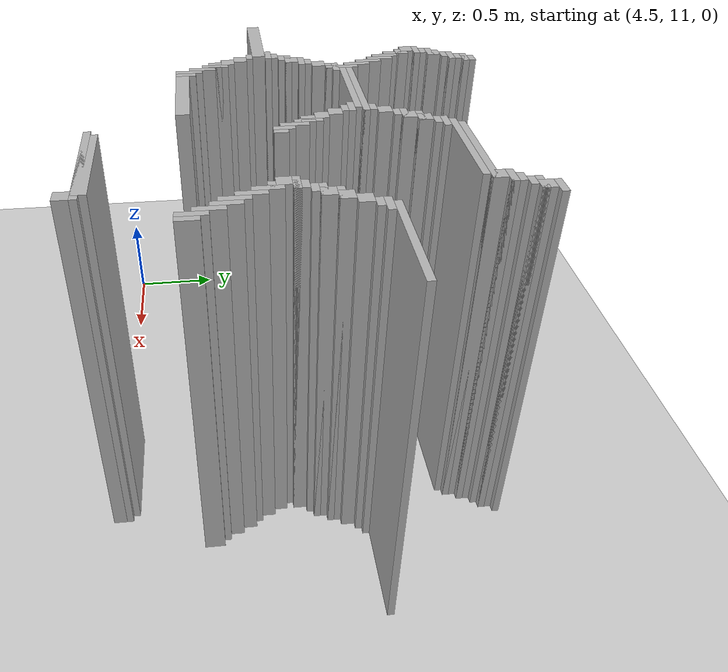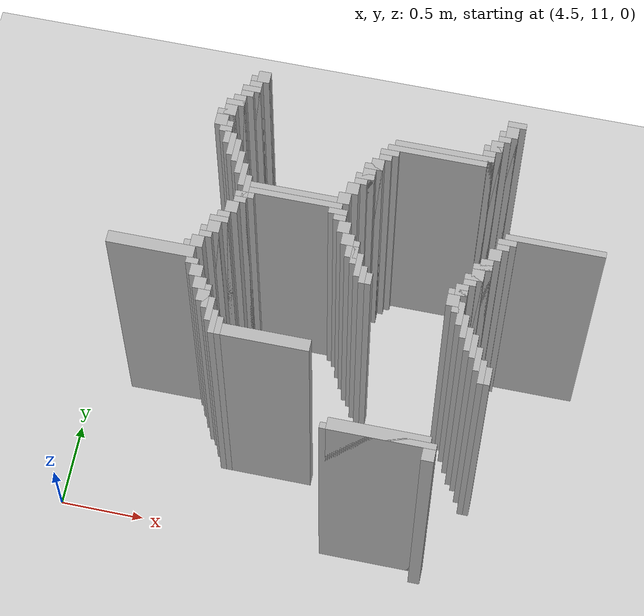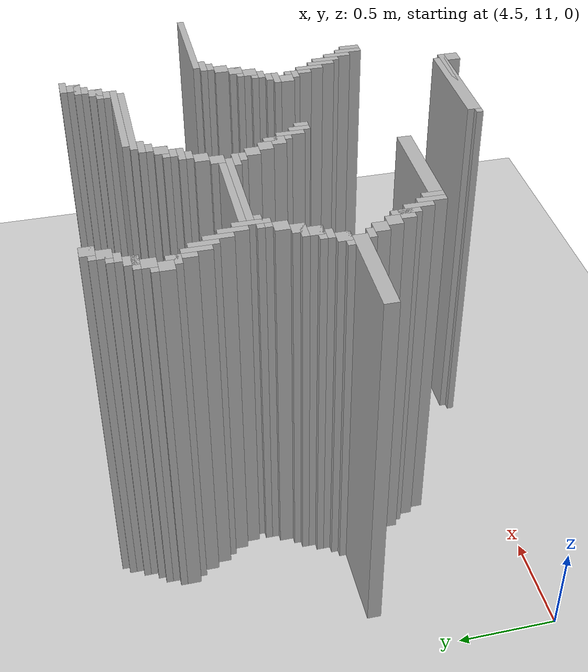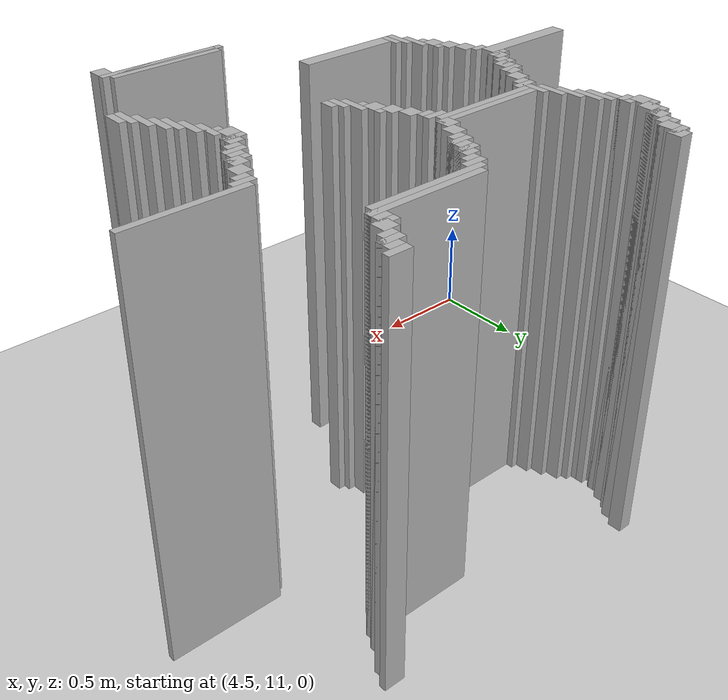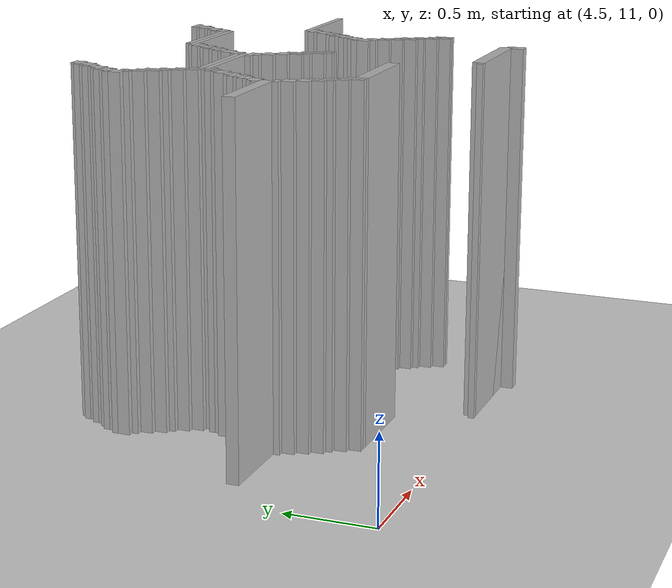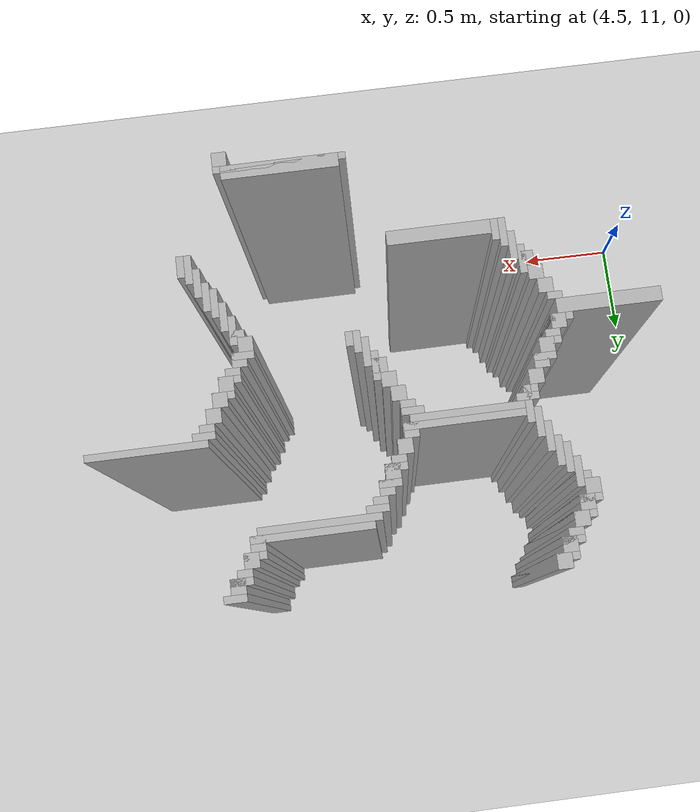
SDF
<sdf version="1.6">
 <world name="slam_world">
  <model name="ground_plane">
   <static>true</static>
   <link name="link">
    <collision name="collision">
     <geometry><plane><normal>0 0 1</normal><size>100 100</size></plane></geometry>
    </collision>
    <visual name="visual">
     <geometry><plane><normal>0 0 1</normal><size>100 100</size></plane></geometry>
     <material>
      <ambient>0.8 0.8 0.8 1</ambient>
      <diffuse>0.8 0.8 0.8 1</diffuse>
      <specular>0.8 0.8 0.8 1</specular>
     </material>
    </visual>
   </link>
  </model>
  <model name="wall_1466">
   <static>true</static>
   <pose>5.359628770301624 13.016241299303944 1.0 0 0 0</pose>
   <link name="link">
    <collision name="collision">
     <geometry><box><size>0.06960556844547564 0.06960556844547564 2.0</size></box></geometry>
    </collision>
    <visual name="visual">
     <geometry><box><size>0.06960556844547564 0.06960556844547564 2.0</size></box></geometry>
     <material><ambient>0.5 0.5 0.5 1</ambient><diffuse>0.7 0.7 0.7 1</diffuse></material>
    </visual>
   </link>
  </model>
  <model name="wall_1478">
   <static>true</static>
   <pose>5.342227378190255 12.998839907192576 1.0 0 0 0</pose>
   <link name="link">
    <collision name="collision">
     <geometry><box><size>0.10440835266821345 0.03480278422273782 2.0</size></box></geometry>
    </collision>
    <visual name="visual">
     <geometry><box><size>0.10440835266821345 0.03480278422273782 2.0</size></box></geometry>
     <material><ambient>0.5 0.5 0.5 1</ambient><diffuse>0.7 0.7 0.7 1</diffuse></material>
    </visual>
   </link>
  </model>
  <model name="wall_1479">
   <static>true</static>
   <pose>6.803944315545244 12.998839907192576 1.0 0 0 0</pose>
   <link name="link">
    <collision name="collision">
     <geometry><box><size>0.10440835266821345 0.03480278422273782 2.0</size></box></geometry>
    </collision>
    <visual name="visual">
     <geometry><box><size>0.10440835266821345 0.03480278422273782 2.0</size></box></geometry>
     <material><ambient>0.5 0.5 0.5 1</ambient><diffuse>0.7 0.7 0.7 1</diffuse></material>
    </visual>
   </link>
  </model>
  <model name="wall_1490">
   <static>true</static>
   <pose>5.324825986078886 12.946635730858468 1.0 0 0 0</pose>
   <link name="link">
    <collision name="collision">
     <geometry><box><size>0.06960556844547564 0.06960556844547564 2.0</size></box></geometry>
    </collision>
    <visual name="visual">
     <geometry><box><size>0.06960556844547564 0.06960556844547564 2.0</size></box></geometry>
     <material><ambient>0.5 0.5 0.5 1</ambient><diffuse>0.7 0.7 0.7 1</diffuse></material>
    </visual>
   </link>
  </model>
  <model name="wall_1491">
   <static>true</static>
   <pose>6.786542923433874 12.946635730858468 1.0 0 0 0</pose>
   <link name="link">
    <collision name="collision">
     <geometry><box><size>0.06960556844547564 0.06960556844547564 2.0</size></box></geometry>
    </collision>
    <visual name="visual">
     <geometry><box><size>0.06960556844547564 0.06960556844547564 2.0</size></box></geometry>
     <material><ambient>0.5 0.5 0.5 1</ambient><diffuse>0.7 0.7 0.7 1</diffuse></material>
    </visual>
   </link>
  </model>
  <model name="wall_1502">
   <static>true</static>
   <pose>5.307424593967517 12.929234338747099 1.0 0 0 0</pose>
   <link name="link">
    <collision name="collision">
     <geometry><box><size>0.10440835266821345 0.03480278422273782 2.0</size></box></geometry>
    </collision>
    <visual name="visual">
     <geometry><box><size>0.10440835266821345 0.03480278422273782 2.0</size></box></geometry>
     <material><ambient>0.5 0.5 0.5 1</ambient><diffuse>0.7 0.7 0.7 1</diffuse></material>
    </visual>
   </link>
  </model>
  <model name="wall_1503">
   <static>true</static>
   <pose>6.769141531322505 12.929234338747099 1.0 0 0 0</pose>
   <link name="link">
    <collision name="collision">
     <geometry><box><size>0.10440835266821345 0.03480278422273782 2.0</size></box></geometry>
    </collision>
    <visual name="visual">
     <geometry><box><size>0.10440835266821345 0.03480278422273782 2.0</size></box></geometry>
     <material><ambient>0.5 0.5 0.5 1</ambient><diffuse>0.7 0.7 0.7 1</diffuse></material>
    </visual>
   </link>
  </model>
  <model name="wall_1511">
   <static>true</static>
   <pose>5.290023201856148 12.894431554524362 1.0 0 0 0</pose>
   <link name="link">
    <collision name="collision">
     <geometry><box><size>0.06960556844547564 0.03480278422273782 2.0</size></box></geometry>
    </collision>
    <visual name="visual">
     <geometry><box><size>0.06960556844547564 0.03480278422273782 2.0</size></box></geometry>
     <material><ambient>0.5 0.5 0.5 1</ambient><diffuse>0.7 0.7 0.7 1</diffuse></material>
    </visual>
   </link>
  </model>
  <model name="wall_1512">
   <static>true</static>
   <pose>6.751740139211137 12.894431554524362 1.0 0 0 0</pose>
   <link name="link">
    <collision name="collision">
     <geometry><box><size>0.06960556844547564 0.03480278422273782 2.0</size></box></geometry>
    </collision>
    <visual name="visual">
     <geometry><box><size>0.06960556844547564 0.03480278422273782 2.0</size></box></geometry>
     <material><ambient>0.5 0.5 0.5 1</ambient><diffuse>0.7 0.7 0.7 1</diffuse></material>
    </visual>
   </link>
  </model>
  <model name="wall_1520">
   <static>true</static>
   <pose>5.25522041763341 12.842227378190255 1.0 0 0 0</pose>
   <link name="link">
    <collision name="collision">
     <geometry><box><size>0.06960556844547564 0.06960556844547564 2.0</size></box></geometry>
    </collision>
    <visual name="visual">
     <geometry><box><size>0.06960556844547564 0.06960556844547564 2.0</size></box></geometry>
     <material><ambient>0.5 0.5 0.5 1</ambient><diffuse>0.7 0.7 0.7 1</diffuse></material>
    </visual>
   </link>
  </model>
  <model name="wall_1521">
   <static>true</static>
   <pose>6.716937354988398 12.842227378190255 1.0 0 0 0</pose>
   <link name="link">
    <collision name="collision">
     <geometry><box><size>0.06960556844547564 0.06960556844547564 2.0</size></box></geometry>
    </collision>
    <visual name="visual">
     <geometry><box><size>0.06960556844547564 0.06960556844547564 2.0</size></box></geometry>
     <material><ambient>0.5 0.5 0.5 1</ambient><diffuse>0.7 0.7 0.7 1</diffuse></material>
    </visual>
   </link>
  </model>
  <model name="wall_1532">
   <static>true</static>
   <pose>5.237819025522041 12.824825986078885 1.0 0 0 0</pose>
   <link name="link">
    <collision name="collision">
     <geometry><box><size>0.10440835266821345 0.03480278422273782 2.0</size></box></geometry>
    </collision>
    <visual name="visual">
     <geometry><box><size>0.10440835266821345 0.03480278422273782 2.0</size></box></geometry>
     <material><ambient>0.5 0.5 0.5 1</ambient><diffuse>0.7 0.7 0.7 1</diffuse></material>
    </visual>
   </link>
  </model>
  <model name="wall_1533">
   <static>true</static>
   <pose>6.69953596287703 12.824825986078885 1.0 0 0 0</pose>
   <link name="link">
    <collision name="collision">
     <geometry><box><size>0.10440835266821345 0.03480278422273782 2.0</size></box></geometry>
    </collision>
    <visual name="visual">
     <geometry><box><size>0.10440835266821345 0.03480278422273782 2.0</size></box></geometry>
     <material><ambient>0.5 0.5 0.5 1</ambient><diffuse>0.7 0.7 0.7 1</diffuse></material>
    </visual>
   </link>
  </model>
  <model name="wall_1541">
   <static>true</static>
   <pose>5.220417633410673 12.772621809744779 1.0 0 0 0</pose>
   <link name="link">
    <collision name="collision">
     <geometry><box><size>0.06960556844547564 0.06960556844547564 2.0</size></box></geometry>
    </collision>
    <visual name="visual">
     <geometry><box><size>0.06960556844547564 0.06960556844547564 2.0</size></box></geometry>
     <material><ambient>0.5 0.5 0.5 1</ambient><diffuse>0.7 0.7 0.7 1</diffuse></material>
    </visual>
   </link>
  </model>
  <model name="wall_1542">
   <static>true</static>
   <pose>6.682134570765661 12.772621809744779 1.0 0 0 0</pose>
   <link name="link">
    <collision name="collision">
     <geometry><box><size>0.06960556844547564 0.06960556844547564 2.0</size></box></geometry>
    </collision>
    <visual name="visual">
     <geometry><box><size>0.06960556844547564 0.06960556844547564 2.0</size></box></geometry>
     <material><ambient>0.5 0.5 0.5 1</ambient><diffuse>0.7 0.7 0.7 1</diffuse></material>
    </visual>
   </link>
  </model>
  <model name="wall_1550">
   <static>true</static>
   <pose>5.203016241299304 12.75522041763341 1.0 0 0 0</pose>
   <link name="link">
    <collision name="collision">
     <geometry><box><size>0.10440835266821345 0.03480278422273782 2.0</size></box></geometry>
    </collision>
    <visual name="visual">
     <geometry><box><size>0.10440835266821345 0.03480278422273782 2.0</size></box></geometry>
     <material><ambient>0.5 0.5 0.5 1</ambient><diffuse>0.7 0.7 0.7 1</diffuse></material>
    </visual>
   </link>
  </model>
  <model name="wall_1551">
   <static>true</static>
   <pose>6.438515081206496 12.75522041763341 1.0 0 0 0</pose>
   <link name="link">
    <collision name="collision">
     <geometry><box><size>0.5568445475638051 0.03480278422273782 2.0</size></box></geometry>
    </collision>
    <visual name="visual">
     <geometry><box><size>0.5568445475638051 0.03480278422273782 2.0</size></box></geometry>
     <material><ambient>0.5 0.5 0.5 1</ambient><diffuse>0.7 0.7 0.7 1</diffuse></material>
    </visual>
   </link>
  </model>
  <model name="wall_1562">
   <static>true</static>
   <pose>5.185614849187935 12.703016241299304 1.0 0 0 0</pose>
   <link name="link">
    <collision name="collision">
     <geometry><box><size>0.06960556844547564 0.06960556844547564 2.0</size></box></geometry>
    </collision>
    <visual name="visual">
     <geometry><box><size>0.06960556844547564 0.06960556844547564 2.0</size></box></geometry>
     <material><ambient>0.5 0.5 0.5 1</ambient><diffuse>0.7 0.7 0.7 1</diffuse></material>
    </visual>
   </link>
  </model>
  <model name="wall_1563">
   <static>true</static>
   <pose>6.403712296983758 12.720417633410673 1.0 0 0 0</pose>
   <link name="link">
    <collision name="collision">
     <geometry><box><size>0.5568445475638051 0.03480278422273782 2.0</size></box></geometry>
    </collision>
    <visual name="visual">
     <geometry><box><size>0.5568445475638051 0.03480278422273782 2.0</size></box></geometry>
     <material><ambient>0.5 0.5 0.5 1</ambient><diffuse>0.7 0.7 0.7 1</diffuse></material>
    </visual>
   </link>
  </model>
  <model name="wall_1575">
   <static>true</static>
   <pose>5.237819025522041 12.633410672853827 1.0 0 0 0</pose>
   <link name="link">
    <collision name="collision">
     <geometry><box><size>0.03480278422273782 0.13921113689095127 2.0</size></box></geometry>
    </collision>
    <visual name="visual">
     <geometry><box><size>0.03480278422273782 0.13921113689095127 2.0</size></box></geometry>
     <material><ambient>0.5 0.5 0.5 1</ambient><diffuse>0.7 0.7 0.7 1</diffuse></material>
    </visual>
   </link>
  </model>
  <model name="wall_1576">
   <static>true</static>
   <pose>6.142691415313225 12.685614849187935 1.0 0 0 0</pose>
   <link name="link">
    <collision name="collision">
     <geometry><box><size>0.10440835266821345 0.03480278422273782 2.0</size></box></geometry>
    </collision>
    <visual name="visual">
     <geometry><box><size>0.10440835266821345 0.03480278422273782 2.0</size></box></geometry>
     <material><ambient>0.5 0.5 0.5 1</ambient><diffuse>0.7 0.7 0.7 1</diffuse></material>
    </visual>
   </link>
  </model>
  <model name="wall_1590">
   <static>true</static>
   <pose>5.220417633410673 12.650812064965196 1.0 0 0 0</pose>
   <link name="link">
    <collision name="collision">
     <geometry><box><size>0.06960556844547564 0.03480278422273782 2.0</size></box></geometry>
    </collision>
    <visual name="visual">
     <geometry><box><size>0.06960556844547564 0.03480278422273782 2.0</size></box></geometry>
     <material><ambient>0.5 0.5 0.5 1</ambient><diffuse>0.7 0.7 0.7 1</diffuse></material>
    </visual>
   </link>
  </model>
  <model name="wall_1591">
   <static>true</static>
   <pose>6.125290023201856 12.650812064965196 1.0 0 0 0</pose>
   <link name="link">
    <collision name="collision">
     <geometry><box><size>0.06960556844547564 0.03480278422273782 2.0</size></box></geometry>
    </collision>
    <visual name="visual">
     <geometry><box><size>0.06960556844547564 0.03480278422273782 2.0</size></box></geometry>
     <material><ambient>0.5 0.5 0.5 1</ambient><diffuse>0.7 0.7 0.7 1</diffuse></material>
    </visual>
   </link>
  </model>
  <model name="wall_1605">
   <static>true</static>
   <pose>5.27262180974478 12.563805104408353 1.0 0 0 0</pose>
   <link name="link">
    <collision name="collision">
     <geometry><box><size>0.03480278422273782 0.13921113689095127 2.0</size></box></geometry>
    </collision>
    <visual name="visual">
     <geometry><box><size>0.03480278422273782 0.13921113689095127 2.0</size></box></geometry>
     <material><ambient>0.5 0.5 0.5 1</ambient><diffuse>0.7 0.7 0.7 1</diffuse></material>
    </visual>
   </link>
  </model>
  <model name="wall_1606">
   <static>true</static>
   <pose>6.090487238979118 12.59860788863109 1.0 0 0 0</pose>
   <link name="link">
    <collision name="collision">
     <geometry><box><size>0.06960556844547564 0.06960556844547564 2.0</size></box></geometry>
    </collision>
    <visual name="visual">
     <geometry><box><size>0.06960556844547564 0.06960556844547564 2.0</size></box></geometry>
     <material><ambient>0.5 0.5 0.5 1</ambient><diffuse>0.7 0.7 0.7 1</diffuse></material>
    </visual>
   </link>
  </model>
  <model name="wall_1622">
   <static>true</static>
   <pose>5.307424593967517 12.529002320185615 1.0 0 0 0</pose>
   <link name="link">
    <collision name="collision">
     <geometry><box><size>0.03480278422273782 0.13921113689095127 2.0</size></box></geometry>
    </collision>
    <visual name="visual">
     <geometry><box><size>0.03480278422273782 0.13921113689095127 2.0</size></box></geometry>
     <material><ambient>0.5 0.5 0.5 1</ambient><diffuse>0.7 0.7 0.7 1</diffuse></material>
    </visual>
   </link>
  </model>
  <model name="wall_1623">
   <static>true</static>
   <pose>6.073085846867749 12.581206496519721 1.0 0 0 0</pose>
   <link name="link">
    <collision name="collision">
     <geometry><box><size>0.10440835266821345 0.03480278422273782 2.0</size></box></geometry>
    </collision>
    <visual name="visual">
     <geometry><box><size>0.10440835266821345 0.03480278422273782 2.0</size></box></geometry>
     <material><ambient>0.5 0.5 0.5 1</ambient><diffuse>0.7 0.7 0.7 1</diffuse></material>
    </visual>
   </link>
  </model>
  <model name="wall_1636">
   <static>true</static>
   <pose>6.05568445475638 12.529002320185615 1.0 0 0 0</pose>
   <link name="link">
    <collision name="collision">
     <geometry><box><size>0.06960556844547564 0.06960556844547564 2.0</size></box></geometry>
    </collision>
    <visual name="visual">
     <geometry><box><size>0.06960556844547564 0.06960556844547564 2.0</size></box></geometry>
     <material><ambient>0.5 0.5 0.5 1</ambient><diffuse>0.7 0.7 0.7 1</diffuse></material>
    </visual>
   </link>
  </model>
  <model name="wall_1650">
   <static>true</static>
   <pose>5.342227378190255 12.459396751740138 1.0 0 0 0</pose>
   <link name="link">
    <collision name="collision">
     <geometry><box><size>0.03480278422273782 0.13921113689095127 2.0</size></box></geometry>
    </collision>
    <visual name="visual">
     <geometry><box><size>0.03480278422273782 0.13921113689095127 2.0</size></box></geometry>
     <material><ambient>0.5 0.5 0.5 1</ambient><diffuse>0.7 0.7 0.7 1</diffuse></material>
    </visual>
   </link>
  </model>
  <model name="wall_1651">
   <static>true</static>
   <pose>6.038283062645012 12.511600928074245 1.0 0 0 0</pose>
   <link name="link">
    <collision name="collision">
     <geometry><box><size>0.10440835266821345 0.03480278422273782 2.0</size></box></geometry>
    </collision>
    <visual name="visual">
     <geometry><box><size>0.10440835266821345 0.03480278422273782 2.0</size></box></geometry>
     <material><ambient>0.5 0.5 0.5 1</ambient><diffuse>0.7 0.7 0.7 1</diffuse></material>
    </visual>
   </link>
  </model>
  <model name="wall_1664">
   <static>true</static>
   <pose>6.020881670533642 12.476798143851507 1.0 0 0 0</pose>
   <link name="link">
    <collision name="collision">
     <geometry><box><size>0.06960556844547564 0.03480278422273782 2.0</size></box></geometry>
    </collision>
    <visual name="visual">
     <geometry><box><size>0.06960556844547564 0.03480278422273782 2.0</size></box></geometry>
     <material><ambient>0.5 0.5 0.5 1</ambient><diffuse>0.7 0.7 0.7 1</diffuse></material>
    </visual>
   </link>
  </model>
  <model name="wall_1676">
   <static>true</static>
   <pose>5.377030162412993 12.389791183294664 1.0 0 0 0</pose>
   <link name="link">
    <collision name="collision">
     <geometry><box><size>0.03480278422273782 0.13921113689095127 2.0</size></box></geometry>
    </collision>
    <visual name="visual">
     <geometry><box><size>0.03480278422273782 0.13921113689095127 2.0</size></box></geometry>
     <material><ambient>0.5 0.5 0.5 1</ambient><diffuse>0.7 0.7 0.7 1</diffuse></material>
    </visual>
   </link>
  </model>
  <model name="wall_1677">
   <static>true</static>
   <pose>5.986078886310905 12.424593967517401 1.0 0 0 0</pose>
   <link name="link">
    <collision name="collision">
     <geometry><box><size>0.06960556844547564 0.06960556844547564 2.0</size></box></geometry>
    </collision>
    <visual name="visual">
     <geometry><box><size>0.06960556844547564 0.06960556844547564 2.0</size></box></geometry>
     <material><ambient>0.5 0.5 0.5 1</ambient><diffuse>0.7 0.7 0.7 1</diffuse></material>
    </visual>
   </link>
  </model>
  <model name="wall_1693">
   <static>true</static>
   <pose>5.41183294663573 12.302784222737818 1.0 0 0 0</pose>
   <link name="link">
    <collision name="collision">
     <geometry><box><size>0.03480278422273782 0.17401392111368907 2.0</size></box></geometry>
    </collision>
    <visual name="visual">
     <geometry><box><size>0.03480278422273782 0.17401392111368907 2.0</size></box></geometry>
     <material><ambient>0.5 0.5 0.5 1</ambient><diffuse>0.7 0.7 0.7 1</diffuse></material>
    </visual>
   </link>
  </model>
  <model name="wall_1694">
   <static>true</static>
   <pose>5.951276102088166 12.354988399071924 1.0 0 0 0</pose>
   <link name="link">
    <collision name="collision">
     <geometry><box><size>0.06960556844547564 0.06960556844547564 2.0</size></box></geometry>
    </collision>
    <visual name="visual">
     <geometry><box><size>0.06960556844547564 0.06960556844547564 2.0</size></box></geometry>
     <material><ambient>0.5 0.5 0.5 1</ambient><diffuse>0.7 0.7 0.7 1</diffuse></material>
    </visual>
   </link>
  </model>
  <model name="wall_1710">
   <static>true</static>
   <pose>5.707656612529002 12.337587006960556 1.0 0 0 0</pose>
   <link name="link">
    <collision name="collision">
     <geometry><box><size>0.5568445475638051 0.03480278422273782 2.0</size></box></geometry>
    </collision>
    <visual name="visual">
     <geometry><box><size>0.5568445475638051 0.03480278422273782 2.0</size></box></geometry>
     <material><ambient>0.5 0.5 0.5 1</ambient><diffuse>0.7 0.7 0.7 1</diffuse></material>
    </visual>
   </link>
  </model>
  <model name="wall_1723">
   <static>true</static>
   <pose>5.690255220417633 12.302784222737818 1.0 0 0 0</pose>
   <link name="link">
    <collision name="collision">
     <geometry><box><size>0.5220417633410672 0.03480278422273782 2.0</size></box></geometry>
    </collision>
    <visual name="visual">
     <geometry><box><size>0.5220417633410672 0.03480278422273782 2.0</size></box></geometry>
     <material><ambient>0.5 0.5 0.5 1</ambient><diffuse>0.7 0.7 0.7 1</diffuse></material>
    </visual>
   </link>
  </model>
  <model name="wall_1724">
   <static>true</static>
   <pose>7.134570765661253 12.302784222737818 1.0 0 0 0</pose>
   <link name="link">
    <collision name="collision">
     <geometry><box><size>0.5568445475638051 0.03480278422273782 2.0</size></box></geometry>
    </collision>
    <visual name="visual">
     <geometry><box><size>0.5568445475638051 0.03480278422273782 2.0</size></box></geometry>
     <material><ambient>0.5 0.5 0.5 1</ambient><diffuse>0.7 0.7 0.7 1</diffuse></material>
    </visual>
   </link>
  </model>
  <model name="wall_1738">
   <static>true</static>
   <pose>5.41183294663573 12.267981438515081 1.0 0 0 0</pose>
   <link name="link">
    <collision name="collision">
     <geometry><box><size>0.10440835266821345 0.03480278422273782 2.0</size></box></geometry>
    </collision>
    <visual name="visual">
     <geometry><box><size>0.10440835266821345 0.03480278422273782 2.0</size></box></geometry>
     <material><ambient>0.5 0.5 0.5 1</ambient><diffuse>0.7 0.7 0.7 1</diffuse></material>
    </visual>
   </link>
  </model>
  <model name="wall_1739">
   <static>true</static>
   <pose>5.933874709976798 12.267981438515081 1.0 0 0 0</pose>
   <link name="link">
    <collision name="collision">
     <geometry><box><size>0.10440835266821345 0.03480278422273782 2.0</size></box></geometry>
    </collision>
    <visual name="visual">
     <geometry><box><size>0.10440835266821345 0.03480278422273782 2.0</size></box></geometry>
     <material><ambient>0.5 0.5 0.5 1</ambient><diffuse>0.7 0.7 0.7 1</diffuse></material>
    </visual>
   </link>
  </model>
  <model name="wall_1740">
   <static>true</static>
   <pose>6.8735498839907185 12.267981438515081 1.0 0 0 0</pose>
   <link name="link">
    <collision name="collision">
     <geometry><box><size>0.10440835266821345 0.03480278422273782 2.0</size></box></geometry>
    </collision>
    <visual name="visual">
     <geometry><box><size>0.10440835266821345 0.03480278422273782 2.0</size></box></geometry>
     <material><ambient>0.5 0.5 0.5 1</ambient><diffuse>0.7 0.7 0.7 1</diffuse></material>
    </visual>
   </link>
  </model>
  <model name="wall_1756">
   <static>true</static>
   <pose>5.3944315545243615 12.233178654292344 1.0 0 0 0</pose>
   <link name="link">
    <collision name="collision">
     <geometry><box><size>0.06960556844547564 0.03480278422273782 2.0</size></box></geometry>
    </collision>
    <visual name="visual">
     <geometry><box><size>0.06960556844547564 0.03480278422273782 2.0</size></box></geometry>
     <material><ambient>0.5 0.5 0.5 1</ambient><diffuse>0.7 0.7 0.7 1</diffuse></material>
    </visual>
   </link>
  </model>
  <model name="wall_1757">
   <static>true</static>
   <pose>5.951276102088166 12.233178654292344 1.0 0 0 0</pose>
   <link name="link">
    <collision name="collision">
     <geometry><box><size>0.06960556844547564 0.03480278422273782 2.0</size></box></geometry>
    </collision>
    <visual name="visual">
     <geometry><box><size>0.06960556844547564 0.03480278422273782 2.0</size></box></geometry>
     <material><ambient>0.5 0.5 0.5 1</ambient><diffuse>0.7 0.7 0.7 1</diffuse></material>
    </visual>
   </link>
  </model>
  <model name="wall_1758">
   <static>true</static>
   <pose>6.85614849187935 12.233178654292344 1.0 0 0 0</pose>
   <link name="link">
    <collision name="collision">
     <geometry><box><size>0.06960556844547564 0.03480278422273782 2.0</size></box></geometry>
    </collision>
    <visual name="visual">
     <geometry><box><size>0.06960556844547564 0.03480278422273782 2.0</size></box></geometry>
     <material><ambient>0.5 0.5 0.5 1</ambient><diffuse>0.7 0.7 0.7 1</diffuse></material>
    </visual>
   </link>
  </model>
  <model name="wall_1772">
   <static>true</static>
   <pose>5.359628770301624 12.180974477958236 1.0 0 0 0</pose>
   <link name="link">
    <collision name="collision">
     <geometry><box><size>0.06960556844547564 0.06960556844547564 2.0</size></box></geometry>
    </collision>
    <visual name="visual">
     <geometry><box><size>0.06960556844547564 0.06960556844547564 2.0</size></box></geometry>
     <material><ambient>0.5 0.5 0.5 1</ambient><diffuse>0.7 0.7 0.7 1</diffuse></material>
    </visual>
   </link>
  </model>
  <model name="wall_1773">
   <static>true</static>
   <pose>5.986078886310905 12.180974477958236 1.0 0 0 0</pose>
   <link name="link">
    <collision name="collision">
     <geometry><box><size>0.06960556844547564 0.06960556844547564 2.0</size></box></geometry>
    </collision>
    <visual name="visual">
     <geometry><box><size>0.06960556844547564 0.06960556844547564 2.0</size></box></geometry>
     <material><ambient>0.5 0.5 0.5 1</ambient><diffuse>0.7 0.7 0.7 1</diffuse></material>
    </visual>
   </link>
  </model>
  <model name="wall_1774">
   <static>true</static>
   <pose>6.821345707656612 12.180974477958236 1.0 0 0 0</pose>
   <link name="link">
    <collision name="collision">
     <geometry><box><size>0.06960556844547564 0.06960556844547564 2.0</size></box></geometry>
    </collision>
    <visual name="visual">
     <geometry><box><size>0.06960556844547564 0.06960556844547564 2.0</size></box></geometry>
     <material><ambient>0.5 0.5 0.5 1</ambient><diffuse>0.7 0.7 0.7 1</diffuse></material>
    </visual>
   </link>
  </model>
  <model name="wall_1788">
   <static>true</static>
   <pose>5.324825986078886 12.11136890951276 1.0 0 0 0</pose>
   <link name="link">
    <collision name="collision">
     <geometry><box><size>0.06960556844547564 0.06960556844547564 2.0</size></box></geometry>
    </collision>
    <visual name="visual">
     <geometry><box><size>0.06960556844547564 0.06960556844547564 2.0</size></box></geometry>
     <material><ambient>0.5 0.5 0.5 1</ambient><diffuse>0.7 0.7 0.7 1</diffuse></material>
    </visual>
   </link>
  </model>
  <model name="wall_1789">
   <static>true</static>
   <pose>6.020881670533642 12.11136890951276 1.0 0 0 0</pose>
   <link name="link">
    <collision name="collision">
     <geometry><box><size>0.06960556844547564 0.06960556844547564 2.0</size></box></geometry>
    </collision>
    <visual name="visual">
     <geometry><box><size>0.06960556844547564 0.06960556844547564 2.0</size></box></geometry>
     <material><ambient>0.5 0.5 0.5 1</ambient><diffuse>0.7 0.7 0.7 1</diffuse></material>
    </visual>
   </link>
  </model>
  <model name="wall_1790">
   <static>true</static>
   <pose>6.786542923433874 12.11136890951276 1.0 0 0 0</pose>
   <link name="link">
    <collision name="collision">
     <geometry><box><size>0.06960556844547564 0.06960556844547564 2.0</size></box></geometry>
    </collision>
    <visual name="visual">
     <geometry><box><size>0.06960556844547564 0.06960556844547564 2.0</size></box></geometry>
     <material><ambient>0.5 0.5 0.5 1</ambient><diffuse>0.7 0.7 0.7 1</diffuse></material>
    </visual>
   </link>
  </model>
  <model name="wall_1804">
   <static>true</static>
   <pose>5.307424593967517 12.093967517401392 1.0 0 0 0</pose>
   <link name="link">
    <collision name="collision">
     <geometry><box><size>0.10440835266821345 0.03480278422273782 2.0</size></box></geometry>
    </collision>
    <visual name="visual">
     <geometry><box><size>0.10440835266821345 0.03480278422273782 2.0</size></box></geometry>
     <material><ambient>0.5 0.5 0.5 1</ambient><diffuse>0.7 0.7 0.7 1</diffuse></material>
    </visual>
   </link>
  </model>
  <model name="wall_1805">
   <static>true</static>
   <pose>6.073085846867749 12.041763341067284 1.0 0 0 0</pose>
   <link name="link">
    <collision name="collision">
     <geometry><box><size>0.03480278422273782 0.13921113689095127 2.0</size></box></geometry>
    </collision>
    <visual name="visual">
     <geometry><box><size>0.03480278422273782 0.13921113689095127 2.0</size></box></geometry>
     <material><ambient>0.5 0.5 0.5 1</ambient><diffuse>0.7 0.7 0.7 1</diffuse></material>
    </visual>
   </link>
  </model>
  <model name="wall_1806">
   <static>true</static>
   <pose>6.769141531322505 12.093967517401392 1.0 0 0 0</pose>
   <link name="link">
    <collision name="collision">
     <geometry><box><size>0.10440835266821345 0.03480278422273782 2.0</size></box></geometry>
    </collision>
    <visual name="visual">
     <geometry><box><size>0.10440835266821345 0.03480278422273782 2.0</size></box></geometry>
     <material><ambient>0.5 0.5 0.5 1</ambient><diffuse>0.7 0.7 0.7 1</diffuse></material>
    </visual>
   </link>
  </model>
  <model name="wall_1816">
   <static>true</static>
   <pose>5.290023201856148 12.041763341067284 1.0 0 0 0</pose>
   <link name="link">
    <collision name="collision">
     <geometry><box><size>0.06960556844547564 0.06960556844547564 2.0</size></box></geometry>
    </collision>
    <visual name="visual">
     <geometry><box><size>0.06960556844547564 0.06960556844547564 2.0</size></box></geometry>
     <material><ambient>0.5 0.5 0.5 1</ambient><diffuse>0.7 0.7 0.7 1</diffuse></material>
    </visual>
   </link>
  </model>
  <model name="wall_1817">
   <static>true</static>
   <pose>6.05568445475638 12.041763341067284 1.0 0 0 0</pose>
   <link name="link">
    <collision name="collision">
     <geometry><box><size>0.06960556844547564 0.06960556844547564 2.0</size></box></geometry>
    </collision>
    <visual name="visual">
     <geometry><box><size>0.06960556844547564 0.06960556844547564 2.0</size></box></geometry>
     <material><ambient>0.5 0.5 0.5 1</ambient><diffuse>0.7 0.7 0.7 1</diffuse></material>
    </visual>
   </link>
  </model>
  <model name="wall_1818">
   <static>true</static>
   <pose>6.751740139211137 12.041763341067284 1.0 0 0 0</pose>
   <link name="link">
    <collision name="collision">
     <geometry><box><size>0.06960556844547564 0.06960556844547564 2.0</size></box></geometry>
    </collision>
    <visual name="visual">
     <geometry><box><size>0.06960556844547564 0.06960556844547564 2.0</size></box></geometry>
     <material><ambient>0.5 0.5 0.5 1</ambient><diffuse>0.7 0.7 0.7 1</diffuse></material>
    </visual>
   </link>
  </model>
  <model name="wall_1830">
   <static>true</static>
   <pose>5.27262180974478 12.024361948955915 1.0 0 0 0</pose>
   <link name="link">
    <collision name="collision">
     <geometry><box><size>0.10440835266821345 0.03480278422273782 2.0</size></box></geometry>
    </collision>
    <visual name="visual">
     <geometry><box><size>0.10440835266821345 0.03480278422273782 2.0</size></box></geometry>
     <material><ambient>0.5 0.5 0.5 1</ambient><diffuse>0.7 0.7 0.7 1</diffuse></material>
    </visual>
   </link>
  </model>
  <model name="wall_1831">
   <static>true</static>
   <pose>6.107888631090487 11.97215777262181 1.0 0 0 0</pose>
   <link name="link">
    <collision name="collision">
     <geometry><box><size>0.03480278422273782 0.13921113689095127 2.0</size></box></geometry>
    </collision>
    <visual name="visual">
     <geometry><box><size>0.03480278422273782 0.13921113689095127 2.0</size></box></geometry>
     <material><ambient>0.5 0.5 0.5 1</ambient><diffuse>0.7 0.7 0.7 1</diffuse></material>
    </visual>
   </link>
  </model>
  <model name="wall_1832">
   <static>true</static>
   <pose>6.734338747099768 12.024361948955915 1.0 0 0 0</pose>
   <link name="link">
    <collision name="collision">
     <geometry><box><size>0.10440835266821345 0.03480278422273782 2.0</size></box></geometry>
    </collision>
    <visual name="visual">
     <geometry><box><size>0.10440835266821345 0.03480278422273782 2.0</size></box></geometry>
     <material><ambient>0.5 0.5 0.5 1</ambient><diffuse>0.7 0.7 0.7 1</diffuse></material>
    </visual>
   </link>
  </model>
  <model name="wall_1842">
   <static>true</static>
   <pose>5.25522041763341 11.989559164733178 1.0 0 0 0</pose>
   <link name="link">
    <collision name="collision">
     <geometry><box><size>0.06960556844547564 0.03480278422273782 2.0</size></box></geometry>
    </collision>
    <visual name="visual">
     <geometry><box><size>0.06960556844547564 0.03480278422273782 2.0</size></box></geometry>
     <material><ambient>0.5 0.5 0.5 1</ambient><diffuse>0.7 0.7 0.7 1</diffuse></material>
    </visual>
   </link>
  </model>
  <model name="wall_1843">
   <static>true</static>
   <pose>6.716937354988398 11.989559164733178 1.0 0 0 0</pose>
   <link name="link">
    <collision name="collision">
     <geometry><box><size>0.06960556844547564 0.03480278422273782 2.0</size></box></geometry>
    </collision>
    <visual name="visual">
     <geometry><box><size>0.06960556844547564 0.03480278422273782 2.0</size></box></geometry>
     <material><ambient>0.5 0.5 0.5 1</ambient><diffuse>0.7 0.7 0.7 1</diffuse></material>
    </visual>
   </link>
  </model>
  <model name="wall_1854">
   <static>true</static>
   <pose>5.220417633410673 11.937354988399072 1.0 0 0 0</pose>
   <link name="link">
    <collision name="collision">
     <geometry><box><size>0.06960556844547564 0.06960556844547564 2.0</size></box></geometry>
    </collision>
    <visual name="visual">
     <geometry><box><size>0.06960556844547564 0.06960556844547564 2.0</size></box></geometry>
     <material><ambient>0.5 0.5 0.5 1</ambient><diffuse>0.7 0.7 0.7 1</diffuse></material>
    </visual>
   </link>
  </model>
  <model name="wall_1855">
   <static>true</static>
   <pose>6.142691415313225 11.919953596287703 1.0 0 0 0</pose>
   <link name="link">
    <collision name="collision">
     <geometry><box><size>0.03480278422273782 0.10440835266821345 2.0</size></box></geometry>
    </collision>
    <visual name="visual">
     <geometry><box><size>0.03480278422273782 0.10440835266821345 2.0</size></box></geometry>
     <material><ambient>0.5 0.5 0.5 1</ambient><diffuse>0.7 0.7 0.7 1</diffuse></material>
    </visual>
   </link>
  </model>
  <model name="wall_1856">
   <static>true</static>
   <pose>6.682134570765661 11.937354988399072 1.0 0 0 0</pose>
   <link name="link">
    <collision name="collision">
     <geometry><box><size>0.06960556844547564 0.06960556844547564 2.0</size></box></geometry>
    </collision>
    <visual name="visual">
     <geometry><box><size>0.06960556844547564 0.06960556844547564 2.0</size></box></geometry>
     <material><ambient>0.5 0.5 0.5 1</ambient><diffuse>0.7 0.7 0.7 1</diffuse></material>
    </visual>
   </link>
  </model>
  <model name="wall_1870">
   <static>true</static>
   <pose>5.203016241299304 11.919953596287703 1.0 0 0 0</pose>
   <link name="link">
    <collision name="collision">
     <geometry><box><size>0.10440835266821345 0.03480278422273782 2.0</size></box></geometry>
    </collision>
    <visual name="visual">
     <geometry><box><size>0.10440835266821345 0.03480278422273782 2.0</size></box></geometry>
     <material><ambient>0.5 0.5 0.5 1</ambient><diffuse>0.7 0.7 0.7 1</diffuse></material>
    </visual>
   </link>
  </model>
  <model name="wall_1871">
   <static>true</static>
   <pose>6.177494199535962 11.902552204176333 1.0 0 0 0</pose>
   <link name="link">
    <collision name="collision">
     <geometry><box><size>0.03480278422273782 0.06960556844547564 2.0</size></box></geometry>
    </collision>
    <visual name="visual">
     <geometry><box><size>0.03480278422273782 0.06960556844547564 2.0</size></box></geometry>
     <material><ambient>0.5 0.5 0.5 1</ambient><diffuse>0.7 0.7 0.7 1</diffuse></material>
    </visual>
   </link>
  </model>
  <model name="wall_1872">
   <static>true</static>
   <pose>6.664733178654292 11.919953596287703 1.0 0 0 0</pose>
   <link name="link">
    <collision name="collision">
     <geometry><box><size>0.10440835266821345 0.03480278422273782 2.0</size></box></geometry>
    </collision>
    <visual name="visual">
     <geometry><box><size>0.10440835266821345 0.03480278422273782 2.0</size></box></geometry>
     <material><ambient>0.5 0.5 0.5 1</ambient><diffuse>0.7 0.7 0.7 1</diffuse></material>
    </visual>
   </link>
  </model>
  <model name="wall_1882">
   <static>true</static>
   <pose>4.976798143851508 11.867749419953595 1.0 0 0 0</pose>
   <link name="link">
    <collision name="collision">
     <geometry><box><size>0.4872389791183295 0.06960556844547564 2.0</size></box></geometry>
    </collision>
    <visual name="visual">
     <geometry><box><size>0.4872389791183295 0.06960556844547564 2.0</size></box></geometry>
     <material><ambient>0.5 0.5 0.5 1</ambient><diffuse>0.7 0.7 0.7 1</diffuse></material>
    </visual>
   </link>
  </model>
  <model name="wall_1883">
   <static>true</static>
   <pose>6.647331786542924 11.867749419953595 1.0 0 0 0</pose>
   <link name="link">
    <collision name="collision">
     <geometry><box><size>0.06960556844547564 0.06960556844547564 2.0</size></box></geometry>
    </collision>
    <visual name="visual">
     <geometry><box><size>0.06960556844547564 0.06960556844547564 2.0</size></box></geometry>
     <material><ambient>0.5 0.5 0.5 1</ambient><diffuse>0.7 0.7 0.7 1</diffuse></material>
    </visual>
   </link>
  </model>
  <model name="wall_1895">
   <static>true</static>
   <pose>6.69953596287703 11.79814385150812 1.0 0 0 0</pose>
   <link name="link">
    <collision name="collision">
     <geometry><box><size>0.03480278422273782 0.13921113689095127 2.0</size></box></geometry>
    </collision>
    <visual name="visual">
     <geometry><box><size>0.03480278422273782 0.13921113689095127 2.0</size></box></geometry>
     <material><ambient>0.5 0.5 0.5 1</ambient><diffuse>0.7 0.7 0.7 1</diffuse></material>
    </visual>
   </link>
  </model>
  <model name="wall_1909">
   <static>true</static>
   <pose>5.220417633410673 11.81554524361949 1.0 0 0 0</pose>
   <link name="link">
    <collision name="collision">
     <geometry><box><size>0.06960556844547564 0.03480278422273782 2.0</size></box></geometry>
    </collision>
    <visual name="visual">
     <geometry><box><size>0.06960556844547564 0.03480278422273782 2.0</size></box></geometry>
     <material><ambient>0.5 0.5 0.5 1</ambient><diffuse>0.7 0.7 0.7 1</diffuse></material>
    </visual>
   </link>
  </model>
  <model name="wall_1910">
   <static>true</static>
   <pose>6.682134570765661 11.81554524361949 1.0 0 0 0</pose>
   <link name="link">
    <collision name="collision">
     <geometry><box><size>0.06960556844547564 0.03480278422273782 2.0</size></box></geometry>
    </collision>
    <visual name="visual">
     <geometry><box><size>0.06960556844547564 0.03480278422273782 2.0</size></box></geometry>
     <material><ambient>0.5 0.5 0.5 1</ambient><diffuse>0.7 0.7 0.7 1</diffuse></material>
    </visual>
   </link>
  </model>
  <model name="wall_1925">
   <static>true</static>
   <pose>5.25522041763341 11.763341067285383 1.0 0 0 0</pose>
   <link name="link">
    <collision name="collision">
     <geometry><box><size>0.06960556844547564 0.06960556844547564 2.0</size></box></geometry>
    </collision>
    <visual name="visual">
     <geometry><box><size>0.06960556844547564 0.06960556844547564 2.0</size></box></geometry>
     <material><ambient>0.5 0.5 0.5 1</ambient><diffuse>0.7 0.7 0.7 1</diffuse></material>
    </visual>
   </link>
  </model>
  <model name="wall_1926">
   <static>true</static>
   <pose>6.734338747099768 11.728538283062644 1.0 0 0 0</pose>
   <link name="link">
    <collision name="collision">
     <geometry><box><size>0.03480278422273782 0.13921113689095127 2.0</size></box></geometry>
    </collision>
    <visual name="visual">
     <geometry><box><size>0.03480278422273782 0.13921113689095127 2.0</size></box></geometry>
     <material><ambient>0.5 0.5 0.5 1</ambient><diffuse>0.7 0.7 0.7 1</diffuse></material>
    </visual>
   </link>
  </model>
  <model name="wall_1941">
   <static>true</static>
   <pose>5.290023201856148 11.693735498839906 1.0 0 0 0</pose>
   <link name="link">
    <collision name="collision">
     <geometry><box><size>0.06960556844547564 0.06960556844547564 2.0</size></box></geometry>
    </collision>
    <visual name="visual">
     <geometry><box><size>0.06960556844547564 0.06960556844547564 2.0</size></box></geometry>
     <material><ambient>0.5 0.5 0.5 1</ambient><diffuse>0.7 0.7 0.7 1</diffuse></material>
    </visual>
   </link>
  </model>
  <model name="wall_1942">
   <static>true</static>
   <pose>6.769141531322505 11.658932714617169 1.0 0 0 0</pose>
   <link name="link">
    <collision name="collision">
     <geometry><box><size>0.03480278422273782 0.13921113689095127 2.0</size></box></geometry>
    </collision>
    <visual name="visual">
     <geometry><box><size>0.03480278422273782 0.13921113689095127 2.0</size></box></geometry>
     <material><ambient>0.5 0.5 0.5 1</ambient><diffuse>0.7 0.7 0.7 1</diffuse></material>
    </visual>
   </link>
  </model>
  <model name="wall_1957">
   <static>true</static>
   <pose>5.342227378190255 11.624129930394432 1.0 0 0 0</pose>
   <link name="link">
    <collision name="collision">
     <geometry><box><size>0.03480278422273782 0.13921113689095127 2.0</size></box></geometry>
    </collision>
    <visual name="visual">
     <geometry><box><size>0.03480278422273782 0.13921113689095127 2.0</size></box></geometry>
     <material><ambient>0.5 0.5 0.5 1</ambient><diffuse>0.7 0.7 0.7 1</diffuse></material>
    </visual>
   </link>
  </model>
  <model name="wall_1958">
   <static>true</static>
   <pose>6.803944315545244 11.624129930394432 1.0 0 0 0</pose>
   <link name="link">
    <collision name="collision">
     <geometry><box><size>0.03480278422273782 0.13921113689095127 2.0</size></box></geometry>
    </collision>
    <visual name="visual">
     <geometry><box><size>0.03480278422273782 0.13921113689095127 2.0</size></box></geometry>
     <material><ambient>0.5 0.5 0.5 1</ambient><diffuse>0.7 0.7 0.7 1</diffuse></material>
    </visual>
   </link>
  </model>
  <model name="wall_1971">
   <static>true</static>
   <pose>5.324825986078886 11.624129930394432 1.0 0 0 0</pose>
   <link name="link">
    <collision name="collision">
     <geometry><box><size>0.06960556844547564 0.06960556844547564 2.0</size></box></geometry>
    </collision>
    <visual name="visual">
     <geometry><box><size>0.06960556844547564 0.06960556844547564 2.0</size></box></geometry>
     <material><ambient>0.5 0.5 0.5 1</ambient><diffuse>0.7 0.7 0.7 1</diffuse></material>
    </visual>
   </link>
  </model>
  <model name="wall_1983">
   <static>true</static>
   <pose>5.377030162412993 11.554524361948955 1.0 0 0 0</pose>
   <link name="link">
    <collision name="collision">
     <geometry><box><size>0.03480278422273782 0.13921113689095127 2.0</size></box></geometry>
    </collision>
    <visual name="visual">
     <geometry><box><size>0.03480278422273782 0.13921113689095127 2.0</size></box></geometry>
     <material><ambient>0.5 0.5 0.5 1</ambient><diffuse>0.7 0.7 0.7 1</diffuse></material>
    </visual>
   </link>
  </model>
  <model name="wall_1984">
   <static>true</static>
   <pose>6.838747099767981 11.554524361948955 1.0 0 0 0</pose>
   <link name="link">
    <collision name="collision">
     <geometry><box><size>0.03480278422273782 0.13921113689095127 2.0</size></box></geometry>
    </collision>
    <visual name="visual">
     <geometry><box><size>0.03480278422273782 0.13921113689095127 2.0</size></box></geometry>
     <material><ambient>0.5 0.5 0.5 1</ambient><diffuse>0.7 0.7 0.7 1</diffuse></material>
    </visual>
   </link>
  </model>
  <model name="wall_2006">
   <static>true</static>
   <pose>5.41183294663573 11.48491879350348 1.0 0 0 0</pose>
   <link name="link">
    <collision name="collision">
     <geometry><box><size>0.03480278422273782 0.13921113689095127 2.0</size></box></geometry>
    </collision>
    <visual name="visual">
     <geometry><box><size>0.03480278422273782 0.13921113689095127 2.0</size></box></geometry>
     <material><ambient>0.5 0.5 0.5 1</ambient><diffuse>0.7 0.7 0.7 1</diffuse></material>
    </visual>
   </link>
  </model>
  <model name="wall_2007">
   <static>true</static>
   <pose>6.8735498839907185 11.48491879350348 1.0 0 0 0</pose>
   <link name="link">
    <collision name="collision">
     <geometry><box><size>0.03480278422273782 0.13921113689095127 2.0</size></box></geometry>
    </collision>
    <visual name="visual">
     <geometry><box><size>0.03480278422273782 0.13921113689095127 2.0</size></box></geometry>
     <material><ambient>0.5 0.5 0.5 1</ambient><diffuse>0.7 0.7 0.7 1</diffuse></material>
    </visual>
   </link>
  </model>
  <model name="wall_2021">
   <static>true</static>
   <pose>5.4466357308584685 11.467517401392112 1.0 0 0 0</pose>
   <link name="link">
    <collision name="collision">
     <geometry><box><size>0.03480278422273782 0.10440835266821345 2.0</size></box></geometry>
    </collision>
    <visual name="visual">
     <geometry><box><size>0.03480278422273782 0.10440835266821345 2.0</size></box></geometry>
     <material><ambient>0.5 0.5 0.5 1</ambient><diffuse>0.7 0.7 0.7 1</diffuse></material>
    </visual>
   </link>
  </model>
  <model name="wall_2022">
   <static>true</static>
   <pose>6.908352668213457 11.467517401392112 1.0 0 0 0</pose>
   <link name="link">
    <collision name="collision">
     <geometry><box><size>0.03480278422273782 0.10440835266821345 2.0</size></box></geometry>
    </collision>
    <visual name="visual">
     <geometry><box><size>0.03480278422273782 0.10440835266821345 2.0</size></box></geometry>
     <material><ambient>0.5 0.5 0.5 1</ambient><diffuse>0.7 0.7 0.7 1</diffuse></material>
    </visual>
   </link>
  </model>
  <model name="wall_2036">
   <static>true</static>
   <pose>5.707656612529002 11.450116009280743 1.0 0 0 0</pose>
   <link name="link">
    <collision name="collision">
     <geometry><box><size>0.4872389791183295 0.06960556844547564 2.0</size></box></geometry>
    </collision>
    <visual name="visual">
     <geometry><box><size>0.4872389791183295 0.06960556844547564 2.0</size></box></geometry>
     <material><ambient>0.5 0.5 0.5 1</ambient><diffuse>0.7 0.7 0.7 1</diffuse></material>
    </visual>
   </link>
  </model>
  <model name="wall_2153">
   <static>true</static>
   <pose>6.403712296983758 11.032482598607888 1.0 0 0 0</pose>
   <link name="link">
    <collision name="collision">
     <geometry><box><size>0.5568445475638051 0.06960556844547564 2.0</size></box></geometry>
    </collision>
    <visual name="visual">
     <geometry><box><size>0.5568445475638051 0.06960556844547564 2.0</size></box></geometry>
     <material><ambient>0.5 0.5 0.5 1</ambient><diffuse>0.7 0.7 0.7 1</diffuse></material>
    </visual>
   </link>
  </model>
  <model name="wall_2165">
   <static>true</static>
   <pose>6.403712296983758 11.01508120649652 1.0 0 0 0</pose>
   <link name="link">
    <collision name="collision">
     <geometry><box><size>0.6264501160092807 0.03480278422273782 2.0</size></box></geometry>
    </collision>
    <visual name="visual">
     <geometry><box><size>0.6264501160092807 0.03480278422273782 2.0</size></box></geometry>
     <material><ambient>0.5 0.5 0.5 1</ambient><diffuse>0.7 0.7 0.7 1</diffuse></material>
    </visual>
   </link>
  </model>
  <model name="wall_2179">
   <static>true</static>
   <pose>6.682134570765661 10.962877030162412 1.0 0 0 0</pose>
   <link name="link">
    <collision name="collision">
     <geometry><box><size>0.06960556844547564 0.06960556844547564 2.0</size></box></geometry>
    </collision>
    <visual name="visual">
     <geometry><box><size>0.06960556844547564 0.06960556844547564 2.0</size></box></geometry>
     <material><ambient>0.5 0.5 0.5 1</ambient><diffuse>0.7 0.7 0.7 1</diffuse></material>
    </visual>
   </link>
  </model>
 </world>
</sdf>
